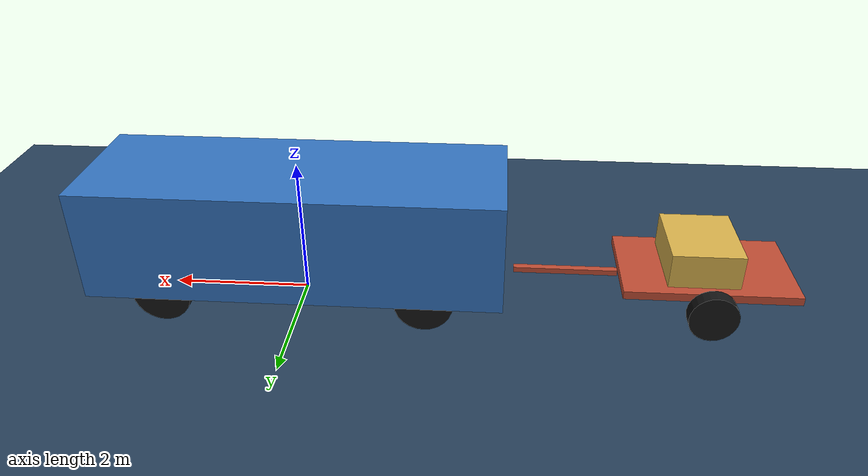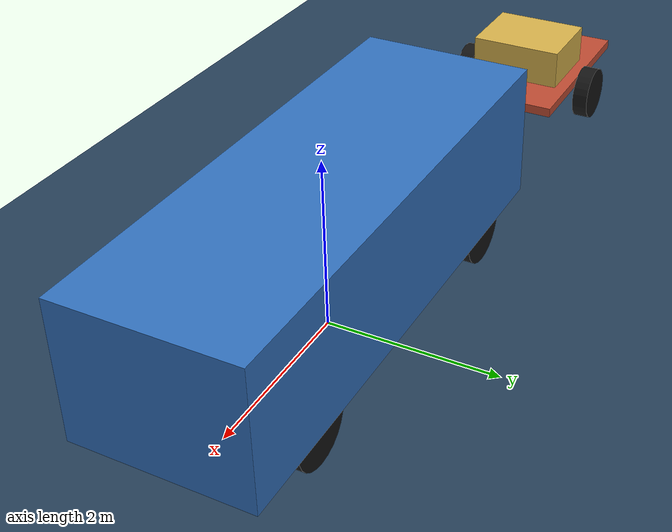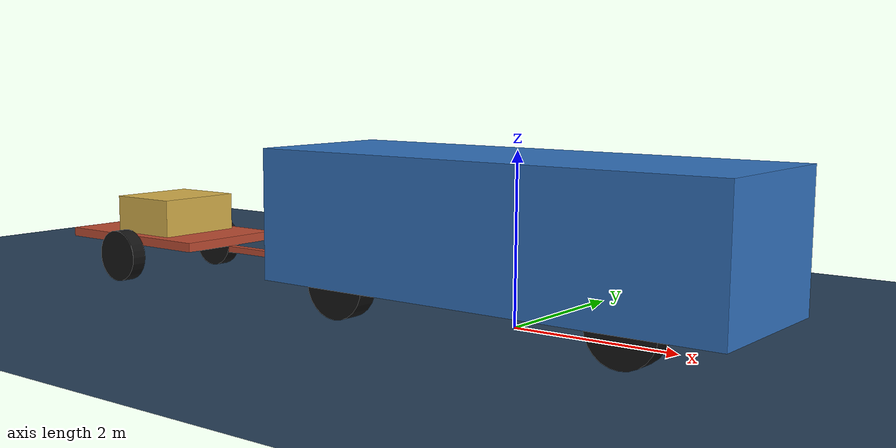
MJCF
<mujoco model="block_pickup_trailer">
  <compiler angle="degree"/>
  <option timestep="0.002" gravity="0 0 -9.81" integrator="implicitfast"/>

  <asset>
    <texture type="skybox" builtin="gradient" rgb1="0.3 0.5 0.7" rgb2="0 0 0" width="512" height="512"/>
    <texture name="grid" type="2d" builtin="checker" rgb1="0.2 0.3 0.4" rgb2="0.1 0.2 0.3" width="512" height="512"/>
    <material name="grid" texture="grid" texrepeat="5 5" texuniform="true"/>
    <material name="truck_mat" rgba="0.2 0.45 0.75 1"/>
    <material name="trailer_mat" rgba="0.75 0.3 0.2 1"/>
    <material name="cargo_mat" rgba="0.85 0.7 0.3 1"/>
    <material name="tire_mat" rgba="0.08 0.08 0.08 1"/>
  </asset>

  <default>
    <geom condim="3" friction="1.2 0.005 0.0001" contype="1" conaffinity="1"/>
    <default class="tire">
      <geom type="cylinder" material="tire_mat" friction="1.3 0.005 0.0001" contype="2" conaffinity="2" priority="1"/>
    </default>
    <default class="spin">
      <joint type="hinge" axis="0 1 0" damping="0.5"/>
    </default>
  </default>

  <worldbody>
    <light pos="0 0 10" dir="0 0 -1" directional="true"/>
    <geom name="floor" type="plane" size="200 200 0.1" material="grid" contype="3" conaffinity="3"/>

    <!-- ================= PICKUP TRUCK (single block) ================= -->
    <!-- body frame at mid-wheelbase, 0.60 m ride height -->
    <body name="car" pos="0 0 0.60">
      <freejoint name="car_root"/>
      <!-- COM: x=+0.26 (57/43 split over 3.70 m wheelbase), z world = 0.70 m -->
      <inertial pos="0.26 0 0.10" mass="2200" diaginertia="1300 5500 6000"/>
      <!-- the block: geom mass is ignored because inertial is explicit -->
      <geom name="truck_block" type="box" size="2.95 1.015 0.80" pos="0 0 0.55" material="truck_mat"/>

      <!-- ======== front suspension + steering ========
           corner sprung ~627 kg -> springref = -mg/k = -0.123 -->
      <body name="fl_susp" pos="1.85 0.86 -0.19">
        <joint name="fl_susp" type="slide" axis="0 0 1" range="-0.13 0.13" stiffness="50000" damping="4200" springref="-0.123"/>
        <geom type="sphere" size="0.06" mass="25" material="truck_mat" contype="0" conaffinity="0"/>
        <body name="fl_knuckle">
          <joint name="fl_steer" type="hinge" axis="0 0 1" range="-35 35" damping="20"/>
          <geom type="sphere" size="0.05" mass="8" material="truck_mat" contype="0" conaffinity="0"/>
          <body name="fl_wheel">
            <joint name="fl_hinge" class="spin"/>
            <geom class="tire" size="0.41 0.1375" zaxis="0 1 0" mass="45"/>
          </body>
        </body>
      </body>
      <body name="fr_susp" pos="1.85 -0.86 -0.19">
        <joint name="fr_susp" type="slide" axis="0 0 1" range="-0.13 0.13" stiffness="50000" damping="4200" springref="-0.123"/>
        <geom type="sphere" size="0.06" mass="25" material="truck_mat" contype="0" conaffinity="0"/>
        <body name="fr_knuckle">
          <joint name="fr_steer" type="hinge" axis="0 0 1" range="-35 35" damping="20"/>
          <geom type="sphere" size="0.05" mass="8" material="truck_mat" contype="0" conaffinity="0"/>
          <body name="fr_wheel">
            <joint name="fr_hinge" class="spin"/>
            <geom class="tire" size="0.41 0.1375" zaxis="0 1 0" mass="45"/>
          </body>
        </body>
      </body>

      <!-- ======== rear suspension (driven axle) ========
           corner sprung ~473 kg -> springref = -0.110 -->
      <body name="rl_susp" pos="-1.85 0.86 -0.19">
        <joint name="rl_susp" type="slide" axis="0 0 1" range="-0.13 0.13" stiffness="42000" damping="3800" springref="-0.110"/>
        <geom type="sphere" size="0.06" mass="25" material="truck_mat" contype="0" conaffinity="0"/>
        <body name="rl_wheel">
          <joint name="rl_hinge" class="spin"/>
          <geom class="tire" size="0.41 0.1375" zaxis="0 1 0" mass="45"/>
        </body>
      </body>
      <body name="rr_susp" pos="-1.85 -0.86 -0.19">
        <joint name="rr_susp" type="slide" axis="0 0 1" range="-0.13 0.13" stiffness="42000" damping="3800" springref="-0.110"/>
        <geom type="sphere" size="0.06" mass="25" material="truck_mat" contype="0" conaffinity="0"/>
        <body name="rr_wheel">
          <joint name="rr_hinge" class="spin"/>
          <geom class="tire" size="0.41 0.1375" zaxis="0 1 0" mass="45"/>
        </body>
      </body>

      <!-- TRAILER_START -->
      <body name="trailer" pos="-3.10 0 -0.15">
        <joint name="hitch" type="ball" limited="true" range="0 45" damping="0.5"/>
        <!-- tongue bar: length = TONGUE_LEN, ball to deck front edge -->
        <geom name="trailer_tongue" type="box" size="0.750 0.05 0.04" pos="-0.750 0 0" mass="45" material="trailer_mat"/>
        <!-- flatbed block: 2.44 x 1.52 m deck, top at 0.61 m world -->
        <geom name="trailer_bed" type="box" size="1.22 0.76 0.06" pos="-2.720 0 0.10" mass="250" material="trailer_mat"/>
        <!-- payload block: default 0.10 m AHEAD of the axle (stable) -->
        <geom name="cargo" type="box" size="0.50 0.60 0.25" pos="-2.620 0 0.41" mass="350" material="cargo_mat"/>

        <!-- single axle at deck center; corner sprung ~274 kg -> springref = -0.077 -->
        <body name="tl_susp" pos="-2.720 0.88 -0.105">
          <joint name="tl_susp" type="slide" axis="0 0 1" range="-0.10 0.10" stiffness="35000" damping="900" springref="-0.077"/>
          <geom type="sphere" size="0.05" mass="12" material="trailer_mat" contype="0" conaffinity="0"/>
          <body name="tl_wheel">
            <joint name="tl_hinge" class="spin"/>
            <geom class="tire" size="0.345 0.1025" zaxis="0 1 0" mass="25" friction="0.9 0.005 0.0001"/>
          </body>
        </body>
        <body name="tr_susp" pos="-2.720 -0.88 -0.105">
          <joint name="tr_susp" type="slide" axis="0 0 1" range="-0.10 0.10" stiffness="35000" damping="900" springref="-0.077"/>
          <geom type="sphere" size="0.05" mass="12" material="trailer_mat" contype="0" conaffinity="0"/>
          <body name="tr_wheel">
            <joint name="tr_hinge" class="spin"/>
            <geom class="tire" size="0.345 0.1025" zaxis="0 1 0" mass="25" friction="0.9 0.005 0.0001"/>
          </body>
        </body>
      </body>
      <!-- TRAILER_END -->
    </body>
  </worldbody>

  <actuator>
    <!-- rear-wheel drive; ctrl = target wheel speed in rad/s
         (ctrl 50 -> ~20.5 m/s -> ~46 mph) -->
    <velocity name="drive_left"  joint="rl_hinge" kv="150" ctrlrange="0 60"/>
    <velocity name="drive_right" joint="rr_hinge" kv="150" ctrlrange="0 60"/>
    <!-- steering: position actuator ctrl is in radians (+-0.61 rad = +-35 deg) -->
    <position name="steer_left"  joint="fl_steer" kp="9000" kv="400" ctrlrange="-0.61 0.61"/>
    <position name="steer_right" joint="fr_steer" kp="9000" kv="400" ctrlrange="-0.61 0.61"/>
  </actuator>

  <sensor>
    <framepos  name="trailer_pos"   objtype="body" objname="trailer"/>
    <frameyaxis name="trailer_yaxis" objtype="body" objname="trailer"/>
  </sensor>
</mujoco>
